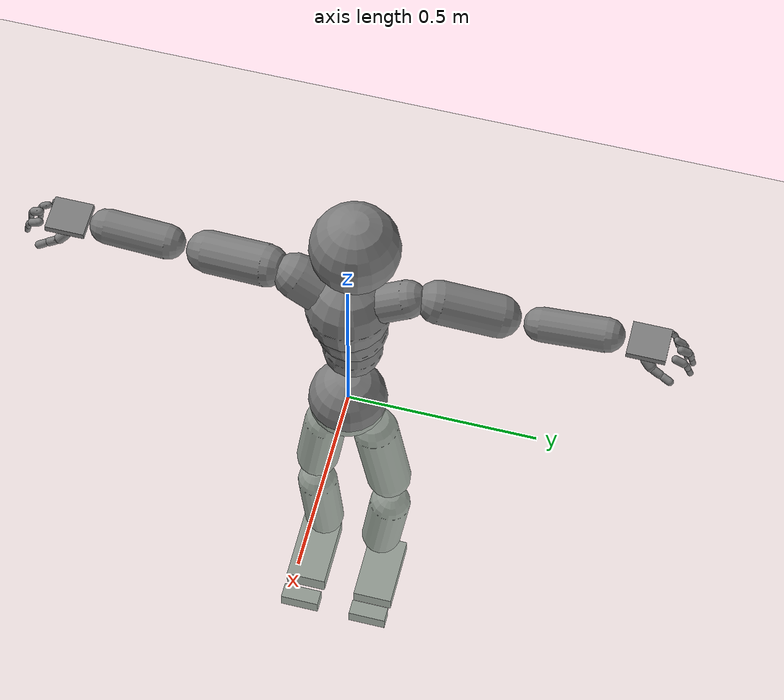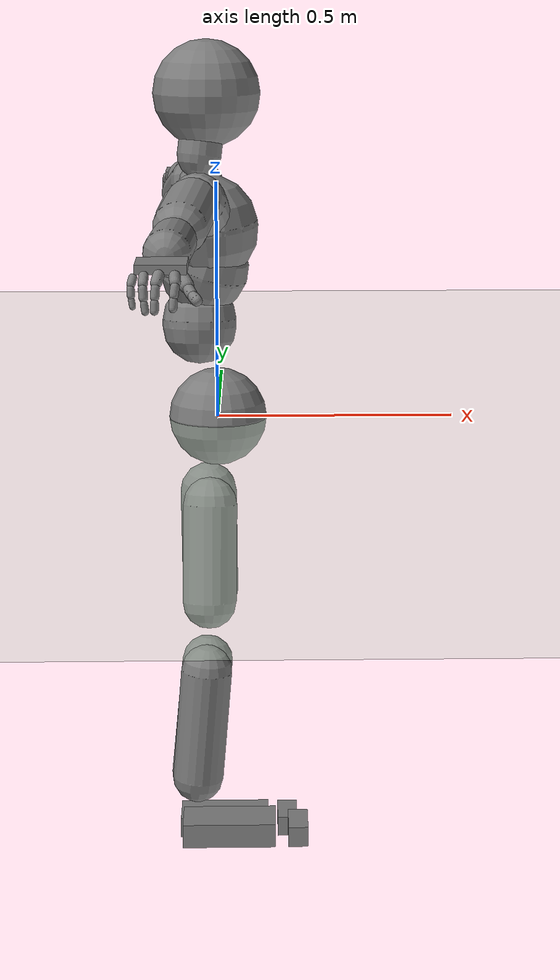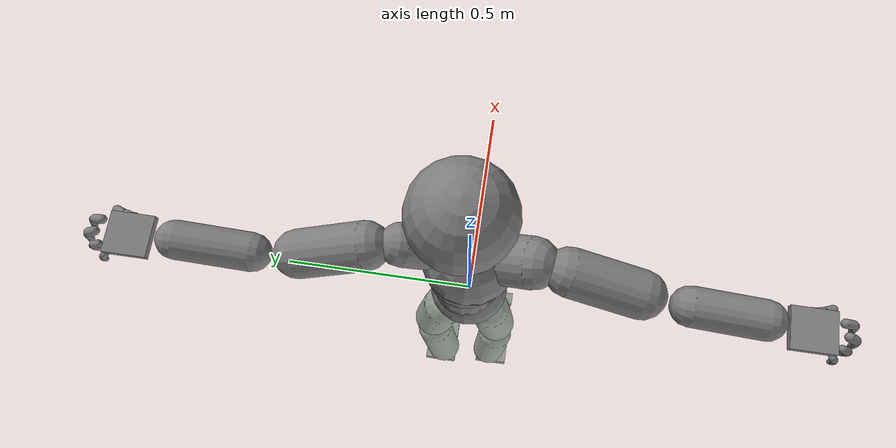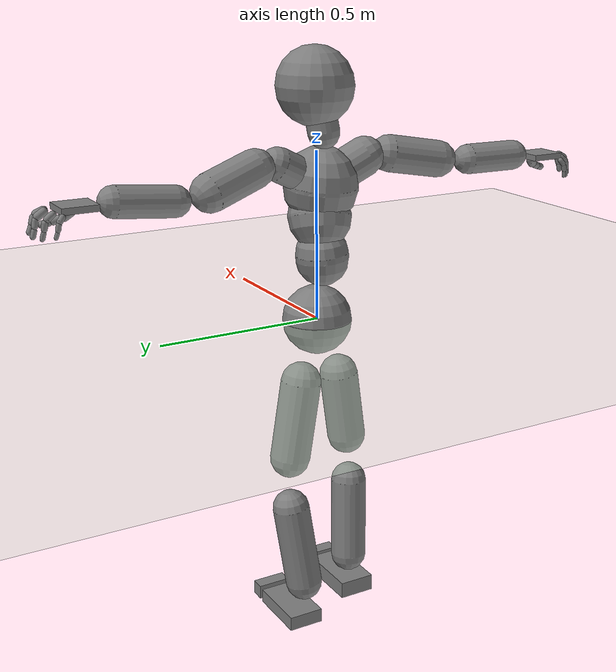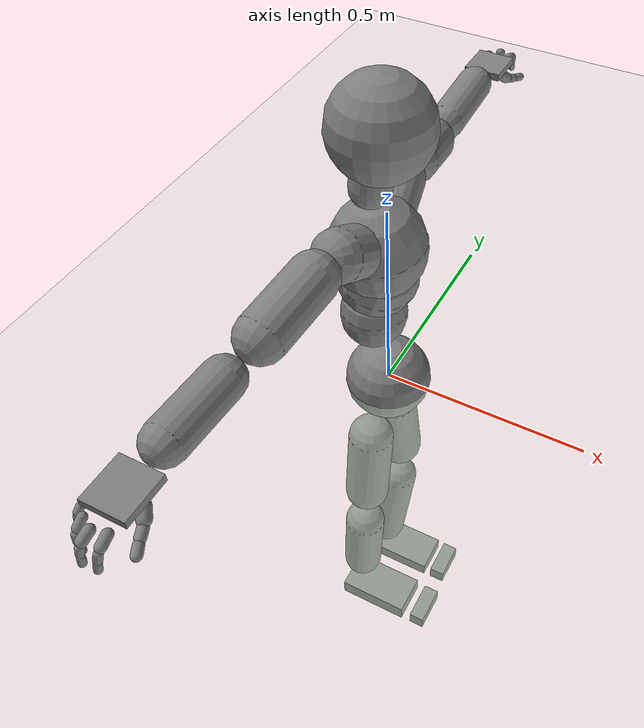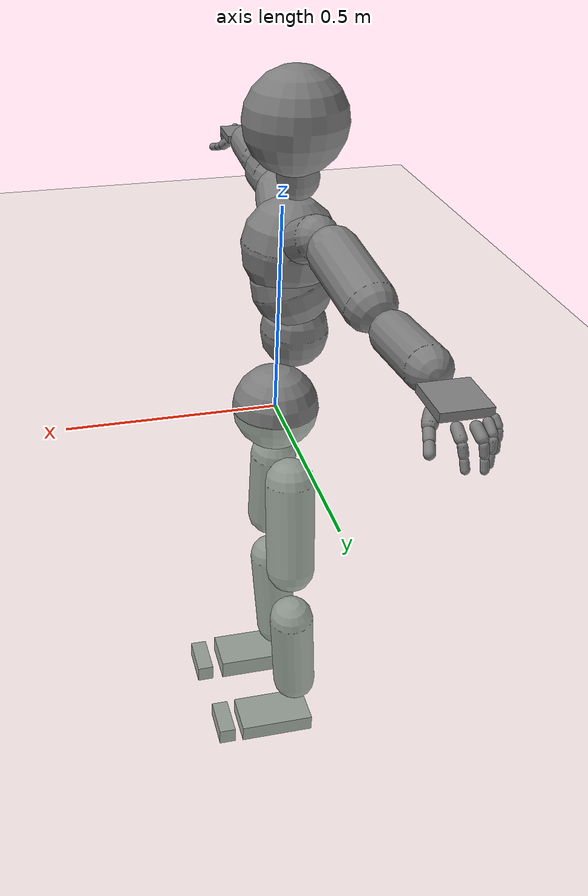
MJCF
<mujoco model="humanoid">
  <compiler coordinate="local" />
  <statistic extent="2" center="0 0 1" />
  <option timestep="0.00555" />
  <default>
    <motor ctrlrange="-1 1" ctrllimited="true" />
    <geom type="capsule" condim="1" friction="1.0 0.05 0.05" solimp=".9 .99 .003" solref=".015 1" />
    <joint type="hinge" damping="0.1" stiffness="5" armature=".007" limited="true" solimplimit="0 .99 .01" />
    <site size=".04" group="3" />
    <default class="force-torque">
      <site type="box" size=".01 .01 .02" rgba="1 0 0 1" />
    </default>
    <default class="touch">
      <site type="capsule" rgba="0 0 1 .3" />
    </default>
  </default>
  <asset>
    <texture type="skybox" builtin="gradient" rgb1=".4 .5 .6" rgb2="0 0 0" width="100" height="100" />
    <texture builtin="flat" height="1278" mark="cross" markrgb="1 1 1" name="texgeom" random="0.01" rgb1="0.8 0.6 0.4" rgb2="0.8 0.6 0.4" type="cube" width="127" />
    <texture builtin="checker" height="100" name="texplane" rgb1="0 0 0" rgb2="0.8 0.8 0.8" type="2d" width="100" />
    <material name="MatPlane" reflectance="0.5" shininess="1" specular="1" texrepeat="60 60" texture="texplane" />
    <material name="geom" texture="texgeom" texuniform="true" />
  </asset>
  <worldbody>
    <light cutoff="100" diffuse="1 1 1" dir="-0 0 -1.3" directional="true" exponent="1" pos="0 0 1.3" specular=".1 .1 .1" />
    <geom conaffinity="1" condim="3" name="floor" pos="0 0 0" rgba="0.8 0.9 0.8 1" size="100 100 .2" type="plane" material="MatPlane" />
    <body name="Pelvis" pos="0 0 0">
      <freejoint name="Pelvis" />
      <geom type="sphere" contype="1" conaffinity="1" density="1000" size="0.1039" pos="0.0000 0.0000 0.0000" name="Pelvis" />
      <body name="L_Hip" pos="-0.0238 0.0559 -0.1007">
        <joint name="L_Hip_x" type="hinge" pos="0 0 0" axis="1 0 0" stiffness="800" damping="80" armature="0.02" range="-180.0000 180.0000" />
        <joint name="L_Hip_y" type="hinge" pos="0 0 0" axis="0 1 0" stiffness="800" damping="80" armature="0.02" range="-180.0000 180.0000" />
        <joint name="L_Hip_z" type="hinge" pos="0 0 0" axis="0 0 1" stiffness="800" damping="80" armature="0.02" range="-180.0000 180.0000" />
        <geom type="capsule" contype="1" conaffinity="1" density="2040.816327" fromto="0.0003 0.0132 -0.0795 0.0012 0.0526 -0.3181" size="0.0608" />
        <body name="L_Knee" pos="0.0015 0.0658 -0.3977">
          <joint name="L_Knee_x" type="hinge" pos="0 0 0" axis="1 0 0" stiffness="800" damping="80" armature="0.02" range="-180.0000 180.0000" />
          <joint name="L_Knee_y" type="hinge" pos="0 0 0" axis="0 1 0" stiffness="800" damping="80" armature="0.02" range="-180.0000 180.0000" />
          <joint name="L_Knee_z" type="hinge" pos="0 0 0" axis="0 0 1" stiffness="800" damping="80" armature="0.02" range="-180.0000 180.0000" />
          <geom type="capsule" contype="1" conaffinity="1" density="1234.567901" fromto="-0.0085 -0.0098 -0.0852 -0.0339 -0.0391 -0.3406" size="0.0562" />
          <body name="L_Ankle" pos="-0.0424 -0.0489 -0.4258">
            <joint name="L_Ankle_x" type="hinge" pos="0 0 0" axis="1 0 0" stiffness="800" damping="80" armature="0.02" range="-180.0000 180.0000" />
            <joint name="L_Ankle_y" type="hinge" pos="0 0 0" axis="0 1 0" stiffness="800" damping="80" armature="0.02" range="-180.0000 180.0000" />
            <joint name="L_Ankle_z" type="hinge" pos="0 0 0" axis="0 0 1" stiffness="800" damping="80" armature="0.02" range="-180.0000 180.0000" />
            <geom type="box" contype="1" conaffinity="1" density="1000" pos="0.0699 0.0225 -0.0310" size="0.0979 0.0545 0.0221" quat="1.0000 0.0000 0.0000 0.0000" />
            <body name="L_Toe" pos="0.1399 0.045 -0.062">
              <joint name="L_Toe_x" type="hinge" pos="0 0 0" axis="1 0 0" stiffness="500" damping="50" armature="0.02" range="-180.0000 180.0000" />
              <joint name="L_Toe_y" type="hinge" pos="0 0 0" axis="0 1 0" stiffness="500" damping="50" armature="0.02" range="-180.0000 180.0000" />
              <joint name="L_Toe_z" type="hinge" pos="0 0 0" axis="0 0 1" stiffness="500" damping="50" armature="0.02" range="-180.0000 180.0000" />
              <geom type="box" contype="1" conaffinity="1" density="1000" pos="0.0709 -0.0225 0.0310" size="0.0216 0.0522 0.0221" quat="1.0000 0.0000 0.0000 0.0000" />
            </body>
          </body>
        </body>
      </body>
      <body name="R_Hip" pos="-0.0168 -0.0552 -0.1087">
        <joint name="R_Hip_x" type="hinge" pos="0 0 0" axis="1 0 0" stiffness="800" damping="80" armature="0.02" range="-180.0000 180.0000" />
        <joint name="R_Hip_y" type="hinge" pos="0 0 0" axis="0 1 0" stiffness="800" damping="80" armature="0.02" range="-180.0000 180.0000" />
        <joint name="R_Hip_z" type="hinge" pos="0 0 0" axis="0 0 1" stiffness="800" damping="80" armature="0.02" range="-180.0000 180.0000" />
        <geom type="capsule" contype="1" conaffinity="1" density="2040.816327" fromto="-0.0009 -0.0090 -0.0695 -0.0035 -0.0358 -0.2779" size="0.0578" />
        <body name="R_Knee" pos="-0.0043 -0.0448 -0.3474">
          <joint name="R_Knee_x" type="hinge" pos="0 0 0" axis="1 0 0" stiffness="800" damping="80" armature="0.02" range="-180.0000 180.0000" />
          <joint name="R_Knee_y" type="hinge" pos="0 0 0" axis="0 1 0" stiffness="800" damping="80" armature="0.02" range="-180.0000 180.0000" />
          <joint name="R_Knee_z" type="hinge" pos="0 0 0" axis="0 0 1" stiffness="800" damping="80" armature="0.02" range="-180.0000 180.0000" />
          <geom type="capsule" contype="1" conaffinity="1" density="1234.567901" fromto="-0.0070 0.0041 -0.0826 -0.0282 0.0166 -0.3302" size="0.0546" />
          <body name="R_Ankle" pos="-0.0352 0.0207 -0.4128">
            <joint name="R_Ankle_x" type="hinge" pos="0 0 0" axis="1 0 0" stiffness="800" damping="80" armature="0.02" range="-180.0000 180.0000" />
            <joint name="R_Ankle_y" type="hinge" pos="0 0 0" axis="0 1 0" stiffness="800" damping="80" armature="0.02" range="-180.0000 180.0000" />
            <joint name="R_Ankle_z" type="hinge" pos="0 0 0" axis="0 0 1" stiffness="800" damping="80" armature="0.02" range="-180.0000 180.0000" />
            <geom type="box" contype="1" conaffinity="1" density="1000" pos="0.0743 -0.0177 -0.0293" size="0.1004 0.0552 0.0258" quat="1.0000 0.0000 0.0000 0.0000" />
            <body name="R_Toe" pos="0.1487 -0.0354 -0.0587">
              <joint name="R_Toe_x" type="hinge" pos="0 0 0" axis="1 0 0" stiffness="500" damping="50" armature="0.02" range="-180.0000 180.0000" />
              <joint name="R_Toe_y" type="hinge" pos="0 0 0" axis="0 1 0" stiffness="500" damping="50" armature="0.02" range="-180.0000 180.0000" />
              <joint name="R_Toe_z" type="hinge" pos="0 0 0" axis="0 0 1" stiffness="500" damping="50" armature="0.02" range="-180.0000 180.0000" />
              <geom type="box" contype="1" conaffinity="1" density="1000" pos="0.0753 0.0177 0.0256" size="0.0214 0.0532 0.0221" quat="1.0000 0.0000 0.0000 0.0000" />
            </body>
          </body>
        </body>
      </body>
      <body name="Torso" pos="-0.0378 -0.0024 0.1175">
        <joint name="Torso_x" type="hinge" pos="0 0 0" axis="1 0 0" stiffness="1000" damping="100" armature="0.02" range="-180.0000 180.0000" />
        <joint name="Torso_y" type="hinge" pos="0 0 0" axis="0 1 0" stiffness="1000" damping="100" armature="0.02" range="-180.0000 180.0000" />
        <joint name="Torso_z" type="hinge" pos="0 0 0" axis="0 0 1" stiffness="1000" damping="100" armature="0.02" range="-180.0000 180.0000" />
        <geom type="capsule" contype="1" conaffinity="1" density="1234.567901" fromto="0.0004 0.0054 0.0755 0.0005 0.0067 0.0923" size="0.0779" />
        <body name="Spine" pos="0.0009 0.0121 0.1679">
          <joint name="Spine_x" type="hinge" pos="0 0 0" axis="1 0 0" stiffness="1000" damping="100" armature="0.02" range="-180.0000 180.0000" />
          <joint name="Spine_y" type="hinge" pos="0 0 0" axis="0 1 0" stiffness="1000" damping="100" armature="0.02" range="-180.0000 180.0000" />
          <joint name="Spine_z" type="hinge" pos="0 0 0" axis="0 0 1" stiffness="1000" damping="100" armature="0.02" range="-180.0000 180.0000" />
          <geom type="capsule" contype="1" conaffinity="1" density="1234.567901" fromto="0.0100 -0.0045 0.0285 0.0122 -0.0054 0.0348" size="0.0929" />
          <body name="Chest" pos="0.0223 -0.0099 0.0632">
            <joint name="Chest_x" type="hinge" pos="0 0 0" axis="1 0 0" stiffness="1000" damping="100" armature="0.02" range="-180.0000 180.0000" />
            <joint name="Chest_y" type="hinge" pos="0 0 0" axis="0 1 0" stiffness="1000" damping="100" armature="0.02" range="-180.0000 180.0000" />
            <joint name="Chest_z" type="hinge" pos="0 0 0" axis="0 0 1" stiffness="1000" damping="100" armature="0.02" range="-180.0000 180.0000" />
            <geom type="capsule" contype="1" conaffinity="1" density="1234.567901" fromto="-0.0054 -0.0020 0.0504 -0.0066 -0.0024 0.0616" size="0.1086" />
            <body name="Neck" pos="-0.024 -0.0093 0.1747">
              <joint name="Neck_x" type="hinge" pos="0 0 0" axis="1 0 0" stiffness="500" damping="50" armature="0.02" range="-180.0000 180.0000" />
              <joint name="Neck_y" type="hinge" pos="0 0 0" axis="0 1 0" stiffness="500" damping="50" armature="0.02" range="-180.0000 180.0000" />
              <joint name="Neck_z" type="hinge" pos="0 0 0" axis="0 0 1" stiffness="500" damping="50" armature="0.02" range="-180.0000 180.0000" />
              <geom type="capsule" contype="1" conaffinity="1" density="1000" fromto="0.0041 0.0048 0.0322 0.0163 0.0190 0.1289" size="0.0462" />
              <body name="Head" pos="0.0204 0.0238 0.1612">
                <joint name="Head_x" type="hinge" pos="0 0 0" axis="1 0 0" stiffness="500" damping="50" armature="0.02" range="-180.0000 180.0000" />
                <joint name="Head_y" type="hinge" pos="0 0 0" axis="0 1 0" stiffness="500" damping="50" armature="0.02" range="-180.0000 180.0000" />
                <joint name="Head_z" type="hinge" pos="0 0 0" axis="0 0 1" stiffness="500" damping="50" armature="0.02" range="-180.0000 180.0000" />
                <geom type="sphere" contype="1" conaffinity="1" density="1000" size="0.1124" pos="0.0000 0.0000 0.0000" name="Head" />
              </body>
            </body>
            <body name="L_Thorax" pos="-0.0042 0.0393 0.08">
              <joint name="L_Thorax_x" type="hinge" pos="0 0 0" axis="1 0 0" stiffness="500" damping="50" armature="0.02" range="-180.0000 180.0000" />
              <joint name="L_Thorax_y" type="hinge" pos="0 0 0" axis="0 1 0" stiffness="500" damping="50" armature="0.02" range="-180.0000 180.0000" />
              <joint name="L_Thorax_z" type="hinge" pos="0 0 0" axis="0 0 1" stiffness="500" damping="50" armature="0.02" range="-180.0000 180.0000" />
              <geom type="capsule" contype="1" conaffinity="1" density="1000" fromto="-0.0040 0.0258 0.0129 -0.0159 0.1033 0.0514" size="0.0488" />
              <body name="L_Shoulder" pos="-0.0199 0.1291 0.0643">
                <joint name="L_Shoulder_x" type="hinge" pos="0 0 0" axis="1 0 0" stiffness="500" damping="50" armature="0.02" range="-180.0000 180.0000" />
                <joint name="L_Shoulder_y" type="hinge" pos="0 0 0" axis="0 1 0" stiffness="500" damping="50" armature="0.02" range="-180.0000 180.0000" />
                <joint name="L_Shoulder_z" type="hinge" pos="0 0 0" axis="0 0 1" stiffness="500" damping="50" armature="0.02" range="-180.0000 180.0000" />
                <geom type="capsule" contype="1" conaffinity="1" density="1000" fromto="-0.0088 0.0494 -0.0156 -0.0351 0.1977 -0.0625" size="0.055" />
                <body name="L_Elbow" pos="-0.0438 0.2472 -0.0781">
                  <joint name="L_Elbow_x" type="hinge" pos="0 0 0" axis="1 0 0" stiffness="500" damping="50" armature="0.02" range="-180.0000 180.0000" />
                  <joint name="L_Elbow_y" type="hinge" pos="0 0 0" axis="0 1 0" stiffness="500" damping="50" armature="0.02" range="-180.0000 180.0000" />
                  <joint name="L_Elbow_z" type="hinge" pos="0 0 0" axis="0 0 1" stiffness="500" damping="50" armature="0.02" range="-180.0000 180.0000" />
                  <geom type="capsule" contype="1" conaffinity="1" density="1000" fromto="-0.0000 0.0550 0.0054 -0.0000 0.2200 0.0215" size="0.0437" />
                  <body name="L_Wrist" pos="0 0.275 0.0269">
                    <joint name="L_Wrist_x" type="hinge" pos="0 0 0" axis="1 0 0" stiffness="300" damping="30" armature="0.02" range="-180.0000 180.0000" />
                    <joint name="L_Wrist_y" type="hinge" pos="0 0 0" axis="0 1 0" stiffness="300" damping="30" armature="0.02" range="-180.0000 180.0000" />
                    <joint name="L_Wrist_z" type="hinge" pos="0 0 0" axis="0 0 1" stiffness="300" damping="30" armature="0.02" range="-180.0000 180.0000" />
                    <geom type="box" contype="1" conaffinity="1" density="1000" pos="-0.0031 0.0483 -0.0059" size="0.047 0.0491 0.0087" quat="1.0000 0.0000 0.0000 0.0000" />
                    <body name="L_Index1" pos="0.0235 0.1137 -0.0089">
                      <joint name="L_Index1_x" type="hinge" pos="0 0 0" axis="1 0 0" stiffness="100" damping="10" armature="0.02" range="-180.0000 180.0000" />
                      <joint name="L_Index1_y" type="hinge" pos="0 0 0" axis="0 1 0" stiffness="100" damping="10" armature="0.02" range="-180.0000 180.0000" />
                      <joint name="L_Index1_z" type="hinge" pos="0 0 0" axis="0 0 1" stiffness="100" damping="10" armature="0.02" range="-180.0000 180.0000" />
                      <geom type="capsule" contype="1" conaffinity="1" density="1000" fromto="0.0004 0.0066 -0.0026 0.0015 0.0266 -0.0103" size="0.0103" />
                      <body name="L_Index2" pos="0.0019 0.0332 -0.0129">
                        <joint name="L_Index2_x" type="hinge" pos="0 0 0" axis="1 0 0" stiffness="100" damping="10" armature="0.02" range="-180.0000 180.0000" />
                        <joint name="L_Index2_y" type="hinge" pos="0 0 0" axis="0 1 0" stiffness="100" damping="10" armature="0.02" range="-180.0000 180.0000" />
                        <joint name="L_Index2_z" type="hinge" pos="0 0 0" axis="0 0 1" stiffness="100" damping="10" armature="0.02" range="-180.0000 180.0000" />
                        <geom type="capsule" contype="1" conaffinity="1" density="1000" fromto="-0.0006 0.0014 -0.0048 -0.0026 0.0056 -0.0191" size="0.0082" />
                        <body name="L_Index3" pos="-0.0032 0.007 -0.0238">
                          <joint name="L_Index3_x" type="hinge" pos="0 0 0" axis="1 0 0" stiffness="100" damping="10" armature="0.02" range="-180.0000 180.0000" />
                          <joint name="L_Index3_y" type="hinge" pos="0 0 0" axis="0 1 0" stiffness="100" damping="10" armature="0.02" range="-180.0000 180.0000" />
                          <joint name="L_Index3_z" type="hinge" pos="0 0 0" axis="0 0 1" stiffness="100" damping="10" armature="0.02" range="-180.0000 180.0000" />
                          <geom type="capsule" contype="1" conaffinity="1" density="1000" fromto="-0.0002 0.0018 -0.0044 -0.0010 0.0072 -0.0175" size="0.0075" />
                        </body>
                      </body>
                    </body>
                    <body name="L_Middle1" pos="-0.0035 0.1224 -0.0057">
                      <joint name="L_Middle1_x" type="hinge" pos="0 0 0" axis="1 0 0" stiffness="100" damping="10" armature="0.02" range="-180.0000 180.0000" />
                      <joint name="L_Middle1_y" type="hinge" pos="0 0 0" axis="0 1 0" stiffness="100" damping="10" armature="0.02" range="-180.0000 180.0000" />
                      <joint name="L_Middle1_z" type="hinge" pos="0 0 0" axis="0 0 1" stiffness="100" damping="10" armature="0.02" range="-180.0000 180.0000" />
                      <geom type="capsule" contype="1" conaffinity="1" density="1000" fromto="-0.0011 0.0058 -0.0034 -0.0042 0.0232 -0.0137" size="0.0106" />
                      <body name="L_Middle2" pos="-0.0053 0.029 -0.0171">
                        <joint name="L_Middle2_x" type="hinge" pos="0 0 0" axis="1 0 0" stiffness="100" damping="10" armature="0.02" range="-180.0000 180.0000" />
                        <joint name="L_Middle2_y" type="hinge" pos="0 0 0" axis="0 1 0" stiffness="100" damping="10" armature="0.02" range="-180.0000 180.0000" />
                        <joint name="L_Middle2_z" type="hinge" pos="0 0 0" axis="0 0 1" stiffness="100" damping="10" armature="0.02" range="-180.0000 180.0000" />
                        <geom type="capsule" contype="1" conaffinity="1" density="1000" fromto="-0.0004 0.0010 -0.0052 -0.0018 0.0040 -0.0207" size="0.008" />
                        <body name="L_Middle3" pos="-0.0022 0.0049 -0.0259">
                          <joint name="L_Middle3_x" type="hinge" pos="0 0 0" axis="1 0 0" stiffness="100" damping="10" armature="0.02" range="-180.0000 180.0000" />
                          <joint name="L_Middle3_y" type="hinge" pos="0 0 0" axis="0 1 0" stiffness="100" damping="10" armature="0.02" range="-180.0000 180.0000" />
                          <joint name="L_Middle3_z" type="hinge" pos="0 0 0" axis="0 0 1" stiffness="100" damping="10" armature="0.02" range="-180.0000 180.0000" />
                          <geom type="capsule" contype="1" conaffinity="1" density="1000" fromto="-0.0000 0.0014 -0.0048 -0.0002 0.0056 -0.0191" size="0.0073" />
                        </body>
                      </body>
                    </body>
                    <body name="L_Pinky1" pos="-0.0504 0.0936 -0.0148">
                      <joint name="L_Pinky1_x" type="hinge" pos="0 0 0" axis="1 0 0" stiffness="100" damping="10" armature="0.02" range="-180.0000 180.0000" />
                      <joint name="L_Pinky1_y" type="hinge" pos="0 0 0" axis="0 1 0" stiffness="100" damping="10" armature="0.02" range="-180.0000 180.0000" />
                      <joint name="L_Pinky1_z" type="hinge" pos="0 0 0" axis="0 0 1" stiffness="100" damping="10" armature="0.02" range="-180.0000 180.0000" />
                      <geom type="capsule" contype="1" conaffinity="1" density="1000" fromto="-0.0010 0.0027 -0.0033 -0.0039 0.0109 -0.0134" size="0.0079" />
                      <body name="L_Pinky2" pos="-0.0049 0.0136 -0.0167">
                        <joint name="L_Pinky2_x" type="hinge" pos="0 0 0" axis="1 0 0" stiffness="100" damping="10" armature="0.02" range="-180.0000 180.0000" />
                        <joint name="L_Pinky2_y" type="hinge" pos="0 0 0" axis="0 1 0" stiffness="100" damping="10" armature="0.02" range="-180.0000 180.0000" />
                        <joint name="L_Pinky2_z" type="hinge" pos="0 0 0" axis="0 0 1" stiffness="100" damping="10" armature="0.02" range="-180.0000 180.0000" />
                        <geom type="capsule" contype="1" conaffinity="1" density="1000" fromto="0.0002 0.0008 -0.0042 0.0008 0.0032 -0.0167" size="0.007" />
                        <body name="L_Pinky3" pos="0.001 0.0039 -0.0209">
                          <joint name="L_Pinky3_x" type="hinge" pos="0 0 0" axis="1 0 0" stiffness="100" damping="10" armature="0.02" range="-180.0000 180.0000" />
                          <joint name="L_Pinky3_y" type="hinge" pos="0 0 0" axis="0 1 0" stiffness="100" damping="10" armature="0.02" range="-180.0000 180.0000" />
                          <joint name="L_Pinky3_z" type="hinge" pos="0 0 0" axis="0 0 1" stiffness="100" damping="10" armature="0.02" range="-180.0000 180.0000" />
                          <geom type="capsule" contype="1" conaffinity="1" density="1000" fromto="0.0006 0.0012 -0.0038 0.0024 0.0048 -0.0151" size="0.0056" />
                        </body>
                      </body>
                    </body>
                    <body name="L_Ring1" pos="-0.0311 0.1088 -0.0086">
                      <joint name="L_Ring1_x" type="hinge" pos="0 0 0" axis="1 0 0" stiffness="100" damping="10" armature="0.02" range="-180.0000 180.0000" />
                      <joint name="L_Ring1_y" type="hinge" pos="0 0 0" axis="0 1 0" stiffness="100" damping="10" armature="0.02" range="-180.0000 180.0000" />
                      <joint name="L_Ring1_z" type="hinge" pos="0 0 0" axis="0 0 1" stiffness="100" damping="10" armature="0.02" range="-180.0000 180.0000" />
                      <geom type="capsule" contype="1" conaffinity="1" density="1000" fromto="-0.0003 0.0052 -0.0037 -0.0012 0.0207 -0.0148" size="0.0089" />
                      <body name="L_Ring2" pos="-0.0015 0.0259 -0.0184">
                        <joint name="L_Ring2_x" type="hinge" pos="0 0 0" axis="1 0 0" stiffness="100" damping="10" armature="0.02" range="-180.0000 180.0000" />
                        <joint name="L_Ring2_y" type="hinge" pos="0 0 0" axis="0 1 0" stiffness="100" damping="10" armature="0.02" range="-180.0000 180.0000" />
                        <joint name="L_Ring2_z" type="hinge" pos="0 0 0" axis="0 0 1" stiffness="100" damping="10" armature="0.02" range="-180.0000 180.0000" />
                        <geom type="capsule" contype="1" conaffinity="1" density="1000" fromto="0.0003 0.0008 -0.0052 0.0013 0.0032 -0.0207" size="0.0081" />
                        <body name="L_Ring3" pos="0.0016 0.004 -0.0259">
                          <joint name="L_Ring3_x" type="hinge" pos="0 0 0" axis="1 0 0" stiffness="100" damping="10" armature="0.02" range="-180.0000 180.0000" />
                          <joint name="L_Ring3_y" type="hinge" pos="0 0 0" axis="0 1 0" stiffness="100" damping="10" armature="0.02" range="-180.0000 180.0000" />
                          <joint name="L_Ring3_z" type="hinge" pos="0 0 0" axis="0 0 1" stiffness="100" damping="10" armature="0.02" range="-180.0000 180.0000" />
                          <geom type="capsule" contype="1" conaffinity="1" density="1000" fromto="0.0007 0.0012 -0.0048 0.0029 0.0048 -0.0191" size="0.0067" />
                        </body>
                      </body>
                    </body>
                    <body name="L_Thumb1" pos="0.0307 0.0445 -0.0209">
                      <joint name="L_Thumb1_x" type="hinge" pos="0 0 0" axis="1 0 0" stiffness="100" damping="10" armature="0.02" range="-180.0000 180.0000" />
                      <joint name="L_Thumb1_y" type="hinge" pos="0 0 0" axis="0 1 0" stiffness="100" damping="10" armature="0.02" range="-180.0000 180.0000" />
                      <joint name="L_Thumb1_z" type="hinge" pos="0 0 0" axis="0 0 1" stiffness="100" damping="10" armature="0.02" range="-180.0000 180.0000" />
                      <geom type="capsule" contype="1" conaffinity="1" density="1000" fromto="0.0029 0.0048 -0.0041 0.0117 0.0191 -0.0163" size="0.0139" />
                      <body name="L_Thumb2" pos="0.0146 0.0239 -0.0203">
                        <joint name="L_Thumb2_x" type="hinge" pos="0 0 0" axis="1 0 0" stiffness="100" damping="10" armature="0.02" range="-180.0000 180.0000" />
                        <joint name="L_Thumb2_y" type="hinge" pos="0 0 0" axis="0 1 0" stiffness="100" damping="10" armature="0.02" range="-180.0000 180.0000" />
                        <joint name="L_Thumb2_z" type="hinge" pos="0 0 0" axis="0 0 1" stiffness="100" damping="10" armature="0.02" range="-180.0000 180.0000" />
                        <geom type="capsule" contype="1" conaffinity="1" density="1000" fromto="0.0017 0.0052 -0.0019 0.0068 0.0210 -0.0076" size="0.0106" />
                        <body name="L_Thumb3" pos="0.0085 0.0262 -0.0095">
                          <joint name="L_Thumb3_x" type="hinge" pos="0 0 0" axis="1 0 0" stiffness="100" damping="10" armature="0.02" range="-180.0000 180.0000" />
                          <joint name="L_Thumb3_y" type="hinge" pos="0 0 0" axis="0 1 0" stiffness="100" damping="10" armature="0.02" range="-180.0000 180.0000" />
                          <joint name="L_Thumb3_z" type="hinge" pos="0 0 0" axis="0 0 1" stiffness="100" damping="10" armature="0.02" range="-180.0000 180.0000" />
                          <geom type="capsule" contype="1" conaffinity="1" density="1000" fromto="0.0021 0.0056 -0.0015 0.0084 0.0226 -0.0060" size="0.0098" />
                        </body>
                      </body>
                    </body>
                  </body>
                </body>
              </body>
            </body>
            <body name="R_Thorax" pos="-0.008 -0.043 0.081">
              <joint name="R_Thorax_x" type="hinge" pos="0 0 0" axis="1 0 0" stiffness="500" damping="50" armature="0.02" range="-180.0000 180.0000" />
              <joint name="R_Thorax_y" type="hinge" pos="0 0 0" axis="0 1 0" stiffness="500" damping="50" armature="0.02" range="-180.0000 180.0000" />
              <joint name="R_Thorax_z" type="hinge" pos="0 0 0" axis="0 0 1" stiffness="500" damping="50" armature="0.02" range="-180.0000 180.0000" />
              <geom type="capsule" contype="1" conaffinity="1" density="1000" fromto="-0.0030 -0.0240 0.0122 -0.0120 -0.0959 0.0488" size="0.0578" />
              <body name="R_Shoulder" pos="-0.015 -0.1199 0.0609">
                <joint name="R_Shoulder_x" type="hinge" pos="0 0 0" axis="1 0 0" stiffness="500" damping="50" armature="0.02" range="-180.0000 180.0000" />
                <joint name="R_Shoulder_y" type="hinge" pos="0 0 0" axis="0 1 0" stiffness="500" damping="50" armature="0.02" range="-180.0000 180.0000" />
                <joint name="R_Shoulder_z" type="hinge" pos="0 0 0" axis="0 0 1" stiffness="500" damping="50" armature="0.02" range="-180.0000 180.0000" />
                <geom type="capsule" contype="1" conaffinity="1" density="1000" fromto="-0.0065 -0.0528 -0.0090 -0.0260 -0.2111 -0.0361" size="0.0543" />
                <body name="R_Elbow" pos="-0.0325 -0.2639 -0.0451">
                  <joint name="R_Elbow_x" type="hinge" pos="0 0 0" axis="1 0 0" stiffness="500" damping="50" armature="0.02" range="-180.0000 180.0000" />
                  <joint name="R_Elbow_y" type="hinge" pos="0 0 0" axis="0 1 0" stiffness="500" damping="50" armature="0.02" range="-180.0000 180.0000" />
                  <joint name="R_Elbow_z" type="hinge" pos="0 0 0" axis="0 0 1" stiffness="500" damping="50" armature="0.02" range="-180.0000 180.0000" />
                  <geom type="capsule" contype="1" conaffinity="1" density="1000" fromto="-0.0022 -0.0533 -0.0000 -0.0090 -0.2133 -0.0001" size="0.0447" />
                  <body name="R_Wrist" pos="-0.0112 -0.2667 -0.0001">
                    <joint name="R_Wrist_x" type="hinge" pos="0 0 0" axis="1 0 0" stiffness="300" damping="30" armature="0.02" range="-180.0000 180.0000" />
                    <joint name="R_Wrist_y" type="hinge" pos="0 0 0" axis="0 1 0" stiffness="300" damping="30" armature="0.02" range="-180.0000 180.0000" />
                    <joint name="R_Wrist_z" type="hinge" pos="0 0 0" axis="0 0 1" stiffness="300" damping="30" armature="0.02" range="-180.0000 180.0000" />
                    <geom type="box" contype="1" conaffinity="1" density="1000" pos="-0.0037 -0.0480 -0.0077" size="0.047 0.0505 0.0088" quat="1.0000 0.0000 0.0000 0.0000" />
                    <body name="R_Index1" pos="0.0223 -0.1131 -0.0126">
                      <joint name="R_Index1_x" type="hinge" pos="0 0 0" axis="1 0 0" stiffness="100" damping="10" armature="0.02" range="-180.0000 180.0000" />
                      <joint name="R_Index1_y" type="hinge" pos="0 0 0" axis="0 1 0" stiffness="100" damping="10" armature="0.02" range="-180.0000 180.0000" />
                      <joint name="R_Index1_z" type="hinge" pos="0 0 0" axis="0 0 1" stiffness="100" damping="10" armature="0.02" range="-180.0000 180.0000" />
                      <geom type="capsule" contype="1" conaffinity="1" density="1000" fromto="0.0004 -0.0066 -0.0026 0.0015 -0.0266 -0.0103" size="0.0103" />
                      <body name="R_Index2" pos="0.0019 -0.0332 -0.0129">
                        <joint name="R_Index2_x" type="hinge" pos="0 0 0" axis="1 0 0" stiffness="100" damping="10" armature="0.02" range="-180.0000 180.0000" />
                        <joint name="R_Index2_y" type="hinge" pos="0 0 0" axis="0 1 0" stiffness="100" damping="10" armature="0.02" range="-180.0000 180.0000" />
                        <joint name="R_Index2_z" type="hinge" pos="0 0 0" axis="0 0 1" stiffness="100" damping="10" armature="0.02" range="-180.0000 180.0000" />
                        <geom type="capsule" contype="1" conaffinity="1" density="1000" fromto="-0.0006 -0.0014 -0.0048 -0.0026 -0.0056 -0.0191" size="0.0082" />
                        <body name="R_Index3" pos="-0.0032 -0.007 -0.0238">
                          <joint name="R_Index3_x" type="hinge" pos="0 0 0" axis="1 0 0" stiffness="100" damping="10" armature="0.02" range="-180.0000 180.0000" />
                          <joint name="R_Index3_y" type="hinge" pos="0 0 0" axis="0 1 0" stiffness="100" damping="10" armature="0.02" range="-180.0000 180.0000" />
                          <joint name="R_Index3_z" type="hinge" pos="0 0 0" axis="0 0 1" stiffness="100" damping="10" armature="0.02" range="-180.0000 180.0000" />
                          <geom type="capsule" contype="1" conaffinity="1" density="1000" fromto="-0.0002 -0.0010 -0.0044 -0.0010 -0.0040 -0.0175" size="0.0076" />
                        </body>
                      </body>
                    </body>
                    <body name="R_Middle1" pos="-0.0047 -0.1217 -0.0094">
                      <joint name="R_Middle1_x" type="hinge" pos="0 0 0" axis="1 0 0" stiffness="100" damping="10" armature="0.02" range="-180.0000 180.0000" />
                      <joint name="R_Middle1_y" type="hinge" pos="0 0 0" axis="0 1 0" stiffness="100" damping="10" armature="0.02" range="-180.0000 180.0000" />
                      <joint name="R_Middle1_z" type="hinge" pos="0 0 0" axis="0 0 1" stiffness="100" damping="10" armature="0.02" range="-180.0000 180.0000" />
                      <geom type="capsule" contype="1" conaffinity="1" density="1000" fromto="-0.0011 -0.0058 -0.0034 -0.0042 -0.0232 -0.0137" size="0.0106" />
                      <body name="R_Middle2" pos="-0.0053 -0.029 -0.0171">
                        <joint name="R_Middle2_x" type="hinge" pos="0 0 0" axis="1 0 0" stiffness="100" damping="10" armature="0.02" range="-180.0000 180.0000" />
                        <joint name="R_Middle2_y" type="hinge" pos="0 0 0" axis="0 1 0" stiffness="100" damping="10" armature="0.02" range="-180.0000 180.0000" />
                        <joint name="R_Middle2_z" type="hinge" pos="0 0 0" axis="0 0 1" stiffness="100" damping="10" armature="0.02" range="-180.0000 180.0000" />
                        <geom type="capsule" contype="1" conaffinity="1" density="1000" fromto="-0.0004 -0.0010 -0.0052 -0.0018 -0.0039 -0.0207" size="0.008" />
                        <body name="R_Middle3" pos="-0.0022 -0.0049 -0.0259">
                          <joint name="R_Middle3_x" type="hinge" pos="0 0 0" axis="1 0 0" stiffness="100" damping="10" armature="0.02" range="-180.0000 180.0000" />
                          <joint name="R_Middle3_y" type="hinge" pos="0 0 0" axis="0 1 0" stiffness="100" damping="10" armature="0.02" range="-180.0000 180.0000" />
                          <joint name="R_Middle3_z" type="hinge" pos="0 0 0" axis="0 0 1" stiffness="100" damping="10" armature="0.02" range="-180.0000 180.0000" />
                          <geom type="capsule" contype="1" conaffinity="1" density="1000" fromto="-0.0000 -0.0006 -0.0048 -0.0002 -0.0023 -0.0191" size="0.0074" />
                        </body>
                      </body>
                    </body>
                    <body name="R_Pinky1" pos="-0.0516 -0.0929 -0.0186">
                      <joint name="R_Pinky1_x" type="hinge" pos="0 0 0" axis="1 0 0" stiffness="100" damping="10" armature="0.02" range="-180.0000 180.0000" />
                      <joint name="R_Pinky1_y" type="hinge" pos="0 0 0" axis="0 1 0" stiffness="100" damping="10" armature="0.02" range="-180.0000 180.0000" />
                      <joint name="R_Pinky1_z" type="hinge" pos="0 0 0" axis="0 0 1" stiffness="100" damping="10" armature="0.02" range="-180.0000 180.0000" />
                      <geom type="capsule" contype="1" conaffinity="1" density="1000" fromto="-0.0010 -0.0027 -0.0033 -0.0039 -0.0109 -0.0133" size="0.0079" />
                      <body name="R_Pinky2" pos="-0.0049 -0.0136 -0.0167">
                        <joint name="R_Pinky2_x" type="hinge" pos="0 0 0" axis="1 0 0" stiffness="100" damping="10" armature="0.02" range="-180.0000 180.0000" />
                        <joint name="R_Pinky2_y" type="hinge" pos="0 0 0" axis="0 1 0" stiffness="100" damping="10" armature="0.02" range="-180.0000 180.0000" />
                        <joint name="R_Pinky2_z" type="hinge" pos="0 0 0" axis="0 0 1" stiffness="100" damping="10" armature="0.02" range="-180.0000 180.0000" />
                        <geom type="capsule" contype="1" conaffinity="1" density="1000" fromto="0.0002 -0.0008 -0.0042 0.0008 -0.0032 -0.0167" size="0.007" />
                        <body name="R_Pinky3" pos="0.001 -0.0039 -0.0209">
                          <joint name="R_Pinky3_x" type="hinge" pos="0 0 0" axis="1 0 0" stiffness="100" damping="10" armature="0.02" range="-180.0000 180.0000" />
                          <joint name="R_Pinky3_y" type="hinge" pos="0 0 0" axis="0 1 0" stiffness="100" damping="10" armature="0.02" range="-180.0000 180.0000" />
                          <joint name="R_Pinky3_z" type="hinge" pos="0 0 0" axis="0 0 1" stiffness="100" damping="10" armature="0.02" range="-180.0000 180.0000" />
                          <geom type="capsule" contype="1" conaffinity="1" density="1000" fromto="0.0006 -0.0004 -0.0038 0.0024 -0.0016 -0.0151" size="0.0057" />
                        </body>
                      </body>
                    </body>
                    <body name="R_Ring1" pos="-0.0323 -0.1081 -0.0123">
                      <joint name="R_Ring1_x" type="hinge" pos="0 0 0" axis="1 0 0" stiffness="100" damping="10" armature="0.02" range="-180.0000 180.0000" />
                      <joint name="R_Ring1_y" type="hinge" pos="0 0 0" axis="0 1 0" stiffness="100" damping="10" armature="0.02" range="-180.0000 180.0000" />
                      <joint name="R_Ring1_z" type="hinge" pos="0 0 0" axis="0 0 1" stiffness="100" damping="10" armature="0.02" range="-180.0000 180.0000" />
                      <geom type="capsule" contype="1" conaffinity="1" density="1000" fromto="-0.0003 -0.0052 -0.0037 -0.0012 -0.0207 -0.0148" size="0.0089" />
                      <body name="R_Ring2" pos="-0.0015 -0.0259 -0.0184">
                        <joint name="R_Ring2_x" type="hinge" pos="0 0 0" axis="1 0 0" stiffness="100" damping="10" armature="0.02" range="-180.0000 180.0000" />
                        <joint name="R_Ring2_y" type="hinge" pos="0 0 0" axis="0 1 0" stiffness="100" damping="10" armature="0.02" range="-180.0000 180.0000" />
                        <joint name="R_Ring2_z" type="hinge" pos="0 0 0" axis="0 0 1" stiffness="100" damping="10" armature="0.02" range="-180.0000 180.0000" />
                        <geom type="capsule" contype="1" conaffinity="1" density="1000" fromto="0.0003 -0.0008 -0.0052 0.0013 -0.0032 -0.0207" size="0.0082" />
                        <body name="R_Ring3" pos="0.0016 -0.004 -0.0259">
                          <joint name="R_Ring3_x" type="hinge" pos="0 0 0" axis="1 0 0" stiffness="100" damping="10" armature="0.02" range="-180.0000 180.0000" />
                          <joint name="R_Ring3_y" type="hinge" pos="0 0 0" axis="0 1 0" stiffness="100" damping="10" armature="0.02" range="-180.0000 180.0000" />
                          <joint name="R_Ring3_z" type="hinge" pos="0 0 0" axis="0 0 1" stiffness="100" damping="10" armature="0.02" range="-180.0000 180.0000" />
                          <geom type="capsule" contype="1" conaffinity="1" density="1000" fromto="0.0007 -0.0004 -0.0048 0.0029 -0.0016 -0.0191" size="0.0068" />
                        </body>
                      </body>
                    </body>
                    <body name="R_Thumb1" pos="0.0294 -0.0439 -0.0246">
                      <joint name="R_Thumb1_x" type="hinge" pos="0 0 0" axis="1 0 0" stiffness="100" damping="10" armature="0.02" range="-180.0000 180.0000" />
                      <joint name="R_Thumb1_y" type="hinge" pos="0 0 0" axis="0 1 0" stiffness="100" damping="10" armature="0.02" range="-180.0000 180.0000" />
                      <joint name="R_Thumb1_z" type="hinge" pos="0 0 0" axis="0 0 1" stiffness="100" damping="10" armature="0.02" range="-180.0000 180.0000" />
                      <geom type="capsule" contype="1" conaffinity="1" density="1000" fromto="0.0029 -0.0048 -0.0041 0.0117 -0.0191 -0.0163" size="0.0138" />
                      <body name="R_Thumb2" pos="0.0146 -0.0239 -0.0203">
                        <joint name="R_Thumb2_x" type="hinge" pos="0 0 0" axis="1 0 0" stiffness="100" damping="10" armature="0.02" range="-180.0000 180.0000" />
                        <joint name="R_Thumb2_y" type="hinge" pos="0 0 0" axis="0 1 0" stiffness="100" damping="10" armature="0.02" range="-180.0000 180.0000" />
                        <joint name="R_Thumb2_z" type="hinge" pos="0 0 0" axis="0 0 1" stiffness="100" damping="10" armature="0.02" range="-180.0000 180.0000" />
                        <geom type="capsule" contype="1" conaffinity="1" density="1000" fromto="0.0017 -0.0052 -0.0019 0.0068 -0.0210 -0.0076" size="0.0106" />
                        <body name="R_Thumb3" pos="0.0085 -0.0262 -0.0095">
                          <joint name="R_Thumb3_x" type="hinge" pos="0 0 0" axis="1 0 0" stiffness="100" damping="10" armature="0.02" range="-180.0000 180.0000" />
                          <joint name="R_Thumb3_y" type="hinge" pos="0 0 0" axis="0 1 0" stiffness="100" damping="10" armature="0.02" range="-180.0000 180.0000" />
                          <joint name="R_Thumb3_z" type="hinge" pos="0 0 0" axis="0 0 1" stiffness="100" damping="10" armature="0.02" range="-180.0000 180.0000" />
                          <geom type="capsule" contype="1" conaffinity="1" density="1000" fromto="0.0021 -0.0048 -0.0015 0.0084 -0.0194 -0.0060" size="0.0102" />
                        </body>
                      </body>
                    </body>
                  </body>
                </body>
              </body>
            </body>
          </body>
        </body>
      </body>
    </body>
  </worldbody>
  <actuator>
    <motor name="L_Hip_x" joint="L_Hip_x" gear="1" />
    <motor name="L_Hip_y" joint="L_Hip_y" gear="1" />
    <motor name="L_Hip_z" joint="L_Hip_z" gear="1" />
    <motor name="L_Knee_x" joint="L_Knee_x" gear="1" />
    <motor name="L_Knee_y" joint="L_Knee_y" gear="1" />
    <motor name="L_Knee_z" joint="L_Knee_z" gear="1" />
    <motor name="L_Ankle_x" joint="L_Ankle_x" gear="1" />
    <motor name="L_Ankle_y" joint="L_Ankle_y" gear="1" />
    <motor name="L_Ankle_z" joint="L_Ankle_z" gear="1" />
    <motor name="L_Toe_x" joint="L_Toe_x" gear="1" />
    <motor name="L_Toe_y" joint="L_Toe_y" gear="1" />
    <motor name="L_Toe_z" joint="L_Toe_z" gear="1" />
    <motor name="R_Hip_x" joint="R_Hip_x" gear="1" />
    <motor name="R_Hip_y" joint="R_Hip_y" gear="1" />
    <motor name="R_Hip_z" joint="R_Hip_z" gear="1" />
    <motor name="R_Knee_x" joint="R_Knee_x" gear="1" />
    <motor name="R_Knee_y" joint="R_Knee_y" gear="1" />
    <motor name="R_Knee_z" joint="R_Knee_z" gear="1" />
    <motor name="R_Ankle_x" joint="R_Ankle_x" gear="1" />
    <motor name="R_Ankle_y" joint="R_Ankle_y" gear="1" />
    <motor name="R_Ankle_z" joint="R_Ankle_z" gear="1" />
    <motor name="R_Toe_x" joint="R_Toe_x" gear="1" />
    <motor name="R_Toe_y" joint="R_Toe_y" gear="1" />
    <motor name="R_Toe_z" joint="R_Toe_z" gear="1" />
    <motor name="Torso_x" joint="Torso_x" gear="1" />
    <motor name="Torso_y" joint="Torso_y" gear="1" />
    <motor name="Torso_z" joint="Torso_z" gear="1" />
    <motor name="Spine_x" joint="Spine_x" gear="1" />
    <motor name="Spine_y" joint="Spine_y" gear="1" />
    <motor name="Spine_z" joint="Spine_z" gear="1" />
    <motor name="Chest_x" joint="Chest_x" gear="1" />
    <motor name="Chest_y" joint="Chest_y" gear="1" />
    <motor name="Chest_z" joint="Chest_z" gear="1" />
    <motor name="Neck_x" joint="Neck_x" gear="1" />
    <motor name="Neck_y" joint="Neck_y" gear="1" />
    <motor name="Neck_z" joint="Neck_z" gear="1" />
    <motor name="Head_x" joint="Head_x" gear="1" />
    <motor name="Head_y" joint="Head_y" gear="1" />
    <motor name="Head_z" joint="Head_z" gear="1" />
    <motor name="L_Thorax_x" joint="L_Thorax_x" gear="1" />
    <motor name="L_Thorax_y" joint="L_Thorax_y" gear="1" />
    <motor name="L_Thorax_z" joint="L_Thorax_z" gear="1" />
    <motor name="L_Shoulder_x" joint="L_Shoulder_x" gear="1" />
    <motor name="L_Shoulder_y" joint="L_Shoulder_y" gear="1" />
    <motor name="L_Shoulder_z" joint="L_Shoulder_z" gear="1" />
    <motor name="L_Elbow_x" joint="L_Elbow_x" gear="1" />
    <motor name="L_Elbow_y" joint="L_Elbow_y" gear="1" />
    <motor name="L_Elbow_z" joint="L_Elbow_z" gear="1" />
    <motor name="L_Wrist_x" joint="L_Wrist_x" gear="1" />
    <motor name="L_Wrist_y" joint="L_Wrist_y" gear="1" />
    <motor name="L_Wrist_z" joint="L_Wrist_z" gear="1" />
    <motor name="L_Index1_x" joint="L_Index1_x" gear="1" />
    <motor name="L_Index1_y" joint="L_Index1_y" gear="1" />
    <motor name="L_Index1_z" joint="L_Index1_z" gear="1" />
    <motor name="L_Index2_x" joint="L_Index2_x" gear="1" />
    <motor name="L_Index2_y" joint="L_Index2_y" gear="1" />
    <motor name="L_Index2_z" joint="L_Index2_z" gear="1" />
    <motor name="L_Index3_x" joint="L_Index3_x" gear="1" />
    <motor name="L_Index3_y" joint="L_Index3_y" gear="1" />
    <motor name="L_Index3_z" joint="L_Index3_z" gear="1" />
    <motor name="L_Middle1_x" joint="L_Middle1_x" gear="1" />
    <motor name="L_Middle1_y" joint="L_Middle1_y" gear="1" />
    <motor name="L_Middle1_z" joint="L_Middle1_z" gear="1" />
    <motor name="L_Middle2_x" joint="L_Middle2_x" gear="1" />
    <motor name="L_Middle2_y" joint="L_Middle2_y" gear="1" />
    <motor name="L_Middle2_z" joint="L_Middle2_z" gear="1" />
    <motor name="L_Middle3_x" joint="L_Middle3_x" gear="1" />
    <motor name="L_Middle3_y" joint="L_Middle3_y" gear="1" />
    <motor name="L_Middle3_z" joint="L_Middle3_z" gear="1" />
    <motor name="L_Pinky1_x" joint="L_Pinky1_x" gear="1" />
    <motor name="L_Pinky1_y" joint="L_Pinky1_y" gear="1" />
    <motor name="L_Pinky1_z" joint="L_Pinky1_z" gear="1" />
    <motor name="L_Pinky2_x" joint="L_Pinky2_x" gear="1" />
    <motor name="L_Pinky2_y" joint="L_Pinky2_y" gear="1" />
    <motor name="L_Pinky2_z" joint="L_Pinky2_z" gear="1" />
    <motor name="L_Pinky3_x" joint="L_Pinky3_x" gear="1" />
    <motor name="L_Pinky3_y" joint="L_Pinky3_y" gear="1" />
    <motor name="L_Pinky3_z" joint="L_Pinky3_z" gear="1" />
    <motor name="L_Ring1_x" joint="L_Ring1_x" gear="1" />
    <motor name="L_Ring1_y" joint="L_Ring1_y" gear="1" />
    <motor name="L_Ring1_z" joint="L_Ring1_z" gear="1" />
    <motor name="L_Ring2_x" joint="L_Ring2_x" gear="1" />
    <motor name="L_Ring2_y" joint="L_Ring2_y" gear="1" />
    <motor name="L_Ring2_z" joint="L_Ring2_z" gear="1" />
    <motor name="L_Ring3_x" joint="L_Ring3_x" gear="1" />
    <motor name="L_Ring3_y" joint="L_Ring3_y" gear="1" />
    <motor name="L_Ring3_z" joint="L_Ring3_z" gear="1" />
    <motor name="L_Thumb1_x" joint="L_Thumb1_x" gear="1" />
    <motor name="L_Thumb1_y" joint="L_Thumb1_y" gear="1" />
    <motor name="L_Thumb1_z" joint="L_Thumb1_z" gear="1" />
    <motor name="L_Thumb2_x" joint="L_Thumb2_x" gear="1" />
    <motor name="L_Thumb2_y" joint="L_Thumb2_y" gear="1" />
    <motor name="L_Thumb2_z" joint="L_Thumb2_z" gear="1" />
    <motor name="L_Thumb3_x" joint="L_Thumb3_x" gear="1" />
    <motor name="L_Thumb3_y" joint="L_Thumb3_y" gear="1" />
    <motor name="L_Thumb3_z" joint="L_Thumb3_z" gear="1" />
    <motor name="R_Thorax_x" joint="R_Thorax_x" gear="1" />
    <motor name="R_Thorax_y" joint="R_Thorax_y" gear="1" />
    <motor name="R_Thorax_z" joint="R_Thorax_z" gear="1" />
    <motor name="R_Shoulder_x" joint="R_Shoulder_x" gear="1" />
    <motor name="R_Shoulder_y" joint="R_Shoulder_y" gear="1" />
    <motor name="R_Shoulder_z" joint="R_Shoulder_z" gear="1" />
    <motor name="R_Elbow_x" joint="R_Elbow_x" gear="1" />
    <motor name="R_Elbow_y" joint="R_Elbow_y" gear="1" />
    <motor name="R_Elbow_z" joint="R_Elbow_z" gear="1" />
    <motor name="R_Wrist_x" joint="R_Wrist_x" gear="1" />
    <motor name="R_Wrist_y" joint="R_Wrist_y" gear="1" />
    <motor name="R_Wrist_z" joint="R_Wrist_z" gear="1" />
    <motor name="R_Index1_x" joint="R_Index1_x" gear="1" />
    <motor name="R_Index1_y" joint="R_Index1_y" gear="1" />
    <motor name="R_Index1_z" joint="R_Index1_z" gear="1" />
    <motor name="R_Index2_x" joint="R_Index2_x" gear="1" />
    <motor name="R_Index2_y" joint="R_Index2_y" gear="1" />
    <motor name="R_Index2_z" joint="R_Index2_z" gear="1" />
    <motor name="R_Index3_x" joint="R_Index3_x" gear="1" />
    <motor name="R_Index3_y" joint="R_Index3_y" gear="1" />
    <motor name="R_Index3_z" joint="R_Index3_z" gear="1" />
    <motor name="R_Middle1_x" joint="R_Middle1_x" gear="1" />
    <motor name="R_Middle1_y" joint="R_Middle1_y" gear="1" />
    <motor name="R_Middle1_z" joint="R_Middle1_z" gear="1" />
    <motor name="R_Middle2_x" joint="R_Middle2_x" gear="1" />
    <motor name="R_Middle2_y" joint="R_Middle2_y" gear="1" />
    <motor name="R_Middle2_z" joint="R_Middle2_z" gear="1" />
    <motor name="R_Middle3_x" joint="R_Middle3_x" gear="1" />
    <motor name="R_Middle3_y" joint="R_Middle3_y" gear="1" />
    <motor name="R_Middle3_z" joint="R_Middle3_z" gear="1" />
    <motor name="R_Pinky1_x" joint="R_Pinky1_x" gear="1" />
    <motor name="R_Pinky1_y" joint="R_Pinky1_y" gear="1" />
    <motor name="R_Pinky1_z" joint="R_Pinky1_z" gear="1" />
    <motor name="R_Pinky2_x" joint="R_Pinky2_x" gear="1" />
    <motor name="R_Pinky2_y" joint="R_Pinky2_y" gear="1" />
    <motor name="R_Pinky2_z" joint="R_Pinky2_z" gear="1" />
    <motor name="R_Pinky3_x" joint="R_Pinky3_x" gear="1" />
    <motor name="R_Pinky3_y" joint="R_Pinky3_y" gear="1" />
    <motor name="R_Pinky3_z" joint="R_Pinky3_z" gear="1" />
    <motor name="R_Ring1_x" joint="R_Ring1_x" gear="1" />
    <motor name="R_Ring1_y" joint="R_Ring1_y" gear="1" />
    <motor name="R_Ring1_z" joint="R_Ring1_z" gear="1" />
    <motor name="R_Ring2_x" joint="R_Ring2_x" gear="1" />
    <motor name="R_Ring2_y" joint="R_Ring2_y" gear="1" />
    <motor name="R_Ring2_z" joint="R_Ring2_z" gear="1" />
    <motor name="R_Ring3_x" joint="R_Ring3_x" gear="1" />
    <motor name="R_Ring3_y" joint="R_Ring3_y" gear="1" />
    <motor name="R_Ring3_z" joint="R_Ring3_z" gear="1" />
    <motor name="R_Thumb1_x" joint="R_Thumb1_x" gear="1" />
    <motor name="R_Thumb1_y" joint="R_Thumb1_y" gear="1" />
    <motor name="R_Thumb1_z" joint="R_Thumb1_z" gear="1" />
    <motor name="R_Thumb2_x" joint="R_Thumb2_x" gear="1" />
    <motor name="R_Thumb2_y" joint="R_Thumb2_y" gear="1" />
    <motor name="R_Thumb2_z" joint="R_Thumb2_z" gear="1" />
    <motor name="R_Thumb3_x" joint="R_Thumb3_x" gear="1" />
    <motor name="R_Thumb3_y" joint="R_Thumb3_y" gear="1" />
    <motor name="R_Thumb3_z" joint="R_Thumb3_z" gear="1" />
  </actuator>
  <contact />
  <size njmax="700" nconmax="700" />
</mujoco>
